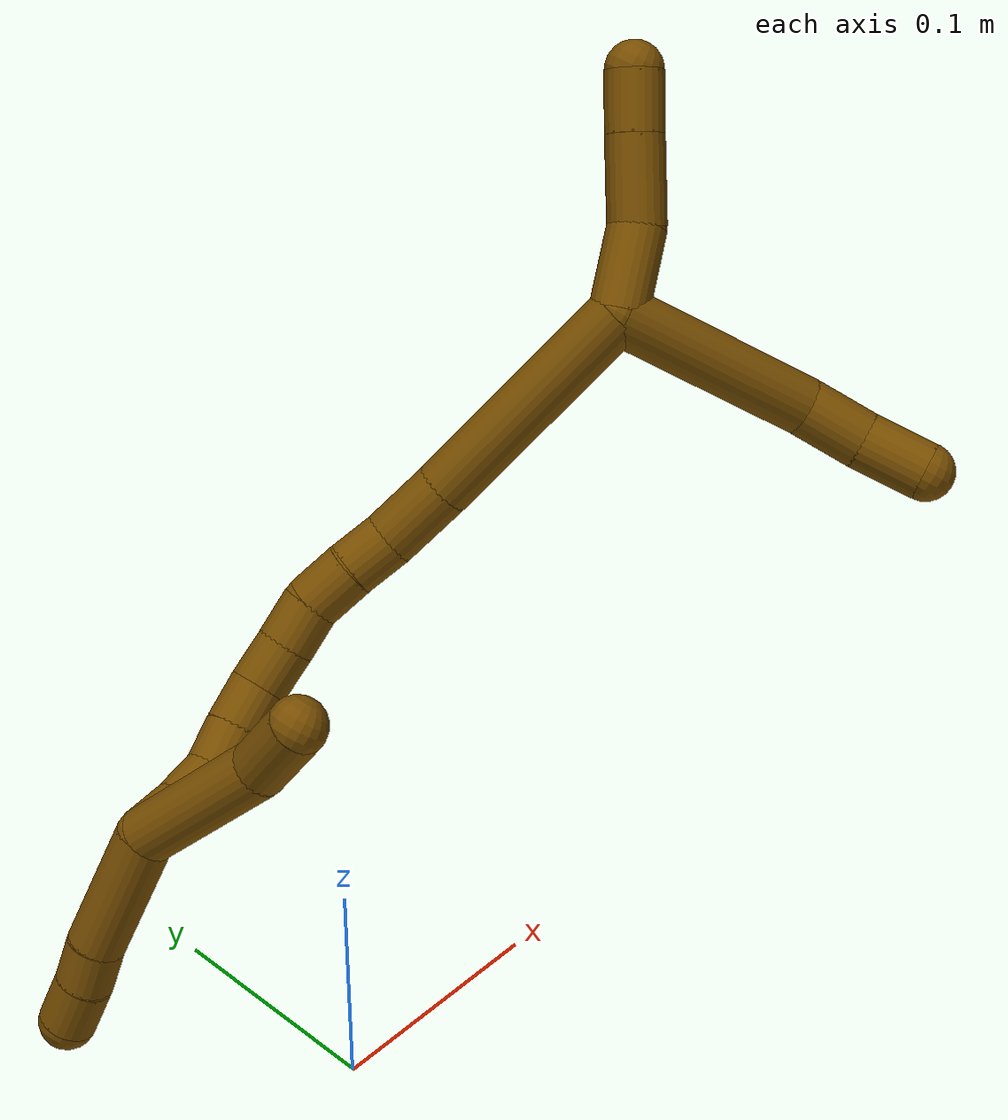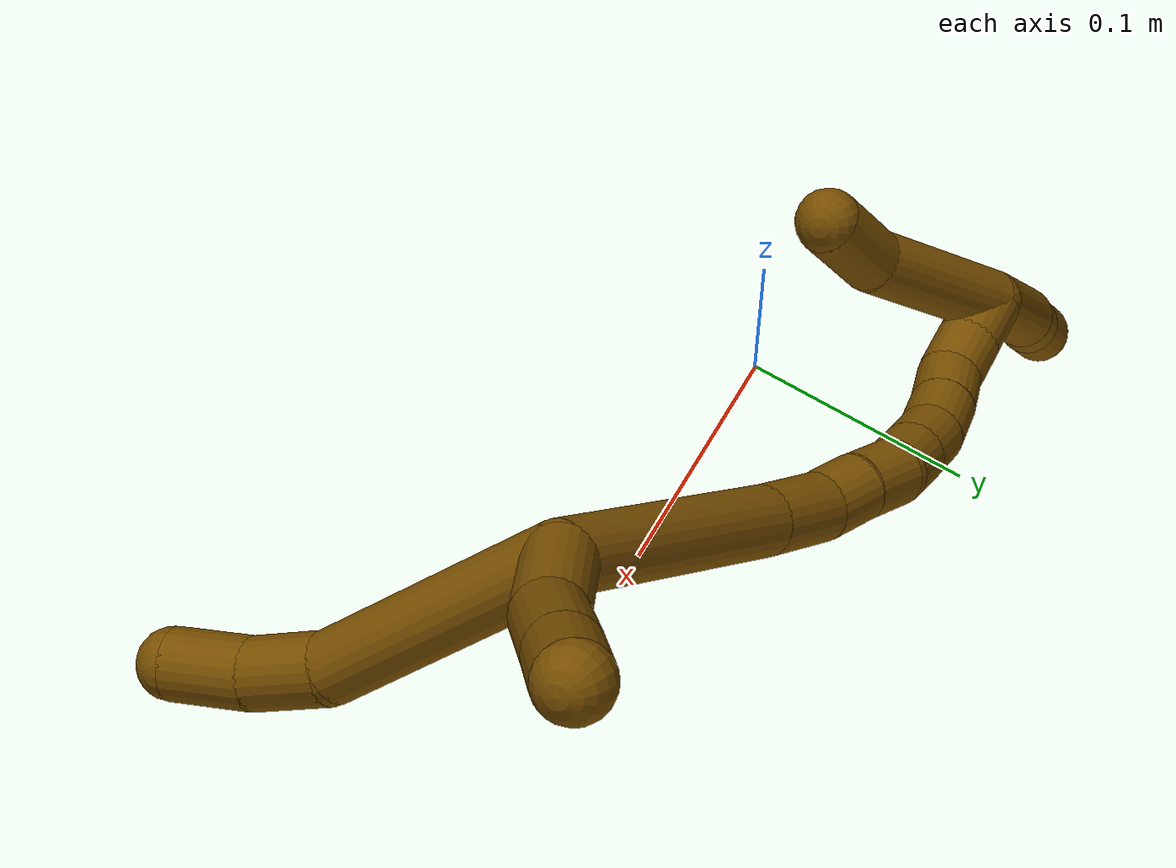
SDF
<sdf version="1.7">
 <world name="default">
  <model name="12">
   <static>0</static>
   <link name="12">
    <collision name="collision-cylinder-e_1_2_8">
     <pose>0.040711 -0.021215 0.002359 1.46006 1.08788 0.992244</pose>
     <geometry><cylinder><radius>0.0125</radius><length>0.091934</length></cylinder></geometry>
     <surface>
      <friction><ode><mu>1.16</mu><mu2>1.16</mu2><slip1>0</slip1><slip2>0</slip2></ode></friction>
      <contact><ode><kp>1e+06</kp><kd>1</kd><max_vel>0</max_vel><min_depth>0.001</min_depth></ode></contact>
     </surface>
    </collision>
    <visual name="visual-cylinder-e_1_2_8">
     <pose>0.040711 -0.021215 0.002359 1.46006 1.08788 0.992244</pose>
     <geometry><cylinder><radius>0.0125</radius><length>0.091934</length></cylinder></geometry>
     <material><ambient>0.466667 0.301961 0 1</ambient></material>
    </visual>
    <collision name="collision-cylinder-e_2_8_9">
     <pose>0.091572 -0.05266 0.004421 1.59983 0.7813 0.801957</pose>
     <geometry><cylinder><radius>0.0125</radius><length>0.028829</length></cylinder></geometry>
     <surface>
      <friction><ode><mu>1.16</mu><mu2>1.16</mu2><slip1>0</slip1><slip2>0</slip2></ode></friction>
      <contact><ode><kp>1e+06</kp><kd>1</kd><max_vel>0</max_vel><min_depth>0.001</min_depth></ode></contact>
     </surface>
    </collision>
    <visual name="visual-cylinder-e_2_8_9">
     <pose>0.091572 -0.05266 0.004421 1.59983 0.7813 0.801957</pose>
     <geometry><cylinder><radius>0.0125</radius><length>0.028829</length></cylinder></geometry>
     <material><ambient>0.466667 0.301961 0 1</ambient></material>
    </visual>
    <collision name="collision-cylinder-e_3_9_6">
     <pose>0.109644 -0.075165 0.004642 1.52858 0.57266 0.55018</pose>
     <geometry><cylinder><radius>0.0125</radius><length>0.029236</length></cylinder></geometry>
     <surface>
      <friction><ode><mu>1.16</mu><mu2>1.16</mu2><slip1>0</slip1><slip2>0</slip2></ode></friction>
      <contact><ode><kp>1e+06</kp><kd>1</kd><max_vel>0</max_vel><min_depth>0.001</min_depth></ode></contact>
     </surface>
    </collision>
    <visual name="visual-cylinder-e_3_9_6">
     <pose>0.109644 -0.075165 0.004642 1.52858 0.57266 0.55018</pose>
     <geometry><cylinder><radius>0.0125</radius><length>0.029236</length></cylinder></geometry>
     <material><ambient>0.466667 0.301961 0 1</ambient></material>
    </visual>
    <collision name="collision-cylinder-e_1_2_10">
     <pose>-0.000911 0.006082 0.017268 -0.338617 -0.049736 0.008504</pose>
     <geometry><cylinder><radius>0.0125</radius><length>0.036662</length></cylinder></geometry>
     <surface>
      <friction><ode><mu>1.16</mu><mu2>1.16</mu2><slip1>0</slip1><slip2>0</slip2></ode></friction>
      <contact><ode><kp>1e+06</kp><kd>1</kd><max_vel>0</max_vel><min_depth>0.001</min_depth></ode></contact>
     </surface>
    </collision>
    <visual name="visual-cylinder-e_1_2_10">
     <pose>-0.000911 0.006082 0.017268 -0.338617 -0.049736 0.008504</pose>
     <geometry><cylinder><radius>0.0125</radius><length>0.036662</length></cylinder></geometry>
     <material><ambient>0.466667 0.301961 0 1</ambient></material>
    </visual>
    <collision name="collision-cylinder-e_2_10_11">
     <pose>-0.008259 0.019112 0.050737 -0.405215 -0.350104 0.072632</pose>
     <geometry><cylinder><radius>0.0125</radius><length>0.037531</length></cylinder></geometry>
     <surface>
      <friction><ode><mu>1.16</mu><mu2>1.16</mu2><slip1>0</slip1><slip2>0</slip2></ode></friction>
      <contact><ode><kp>1e+06</kp><kd>1</kd><max_vel>0</max_vel><min_depth>0.001</min_depth></ode></contact>
     </surface>
    </collision>
    <visual name="visual-cylinder-e_2_10_11">
     <pose>-0.008259 0.019112 0.050737 -0.405215 -0.350104 0.072632</pose>
     <geometry><cylinder><radius>0.0125</radius><length>0.037531</length></cylinder></geometry>
     <material><ambient>0.466667 0.301961 0 1</ambient></material>
    </visual>
    <collision name="collision-cylinder-e_3_11_5">
     <pose>-0.018977 0.030781 0.078157 -0.398198 -0.338168 0.068863</pose>
     <geometry><cylinder><radius>0.0125</radius><length>0.025807</length></cylinder></geometry>
     <surface>
      <friction><ode><mu>1.16</mu><mu2>1.16</mu2><slip1>0</slip1><slip2>0</slip2></ode></friction>
      <contact><ode><kp>1e+06</kp><kd>1</kd><max_vel>0</max_vel><min_depth>0.001</min_depth></ode></contact>
     </surface>
    </collision>
    <visual name="visual-cylinder-e_3_11_5">
     <pose>-0.018977 0.030781 0.078157 -0.398198 -0.338168 0.068863</pose>
     <geometry><cylinder><radius>0.0125</radius><length>0.025807</length></cylinder></geometry>
     <material><ambient>0.466667 0.301961 0 1</ambient></material>
    </visual>
    <collision name="collision-cylinder-e_1_2_12">
     <pose>-0.001858 0.017746 -0.048777 -2.79267 -0.035775 0.202299</pose>
     <geometry><cylinder><radius>0.0125</radius><length>0.103877</length></cylinder></geometry>
     <surface>
      <friction><ode><mu>1.16</mu><mu2>1.16</mu2><slip1>0</slip1><slip2>0</slip2></ode></friction>
      <contact><ode><kp>1e+06</kp><kd>1</kd><max_vel>0</max_vel><min_depth>0.001</min_depth></ode></contact>
     </surface>
    </collision>
    <visual name="visual-cylinder-e_1_2_12">
     <pose>-0.001858 0.017746 -0.048777 -2.79267 -0.035775 0.202299</pose>
     <geometry><cylinder><radius>0.0125</radius><length>0.103877</length></cylinder></geometry>
     <material><ambient>0.466667 0.301961 0 1</ambient></material>
    </visual>
    <collision name="collision-cylinder-e_2_12_13">
     <pose>-0.005163 0.040702 -0.112197 -2.79974 -0.092888 0.526037</pose>
     <geometry><cylinder><radius>0.0125</radius><length>0.031216</length></cylinder></geometry>
     <surface>
      <friction><ode><mu>1.16</mu><mu2>1.16</mu2><slip1>0</slip1><slip2>0</slip2></ode></friction>
      <contact><ode><kp>1e+06</kp><kd>1</kd><max_vel>0</max_vel><min_depth>0.001</min_depth></ode></contact>
     </surface>
    </collision>
    <visual name="visual-cylinder-e_2_12_13">
     <pose>-0.005163 0.040702 -0.112197 -2.79974 -0.092888 0.526037</pose>
     <geometry><cylinder><radius>0.0125</radius><length>0.031216</length></cylinder></geometry>
     <material><ambient>0.466667 0.301961 0 1</ambient></material>
    </visual>
    <collision name="collision-cylinder-e_3_13_14">
     <pose>-0.009615 0.048647 -0.136357 -2.86177 -0.29455 1.62278</pose>
     <geometry><cylinder><radius>0.0125</radius><length>0.020699</length></cylinder></geometry>
     <surface>
      <friction><ode><mu>1.16</mu><mu2>1.16</mu2><slip1>0</slip1><slip2>0</slip2></ode></friction>
      <contact><ode><kp>1e+06</kp><kd>1</kd><max_vel>0</max_vel><min_depth>0.001</min_depth></ode></contact>
     </surface>
    </collision>
    <visual name="visual-cylinder-e_3_13_14">
     <pose>-0.009615 0.048647 -0.136357 -2.86177 -0.29455 1.62278</pose>
     <geometry><cylinder><radius>0.0125</radius><length>0.020699</length></cylinder></geometry>
     <material><ambient>0.466667 0.301961 0 1</ambient></material>
    </visual>
    <collision name="collision-cylinder-e_4_14_15">
     <pose>-0.01475 0.054505 -0.156268 -2.8497 -0.193834 1.1687</pose>
     <geometry><cylinder><radius>0.0125</radius><length>0.022117</length></cylinder></geometry>
     <surface>
      <friction><ode><mu>1.16</mu><mu2>1.16</mu2><slip1>0</slip1><slip2>0</slip2></ode></friction>
      <contact><ode><kp>1e+06</kp><kd>1</kd><max_vel>0</max_vel><min_depth>0.001</min_depth></ode></contact>
     </surface>
    </collision>
    <visual name="visual-cylinder-e_4_14_15">
     <pose>-0.01475 0.054505 -0.156268 -2.8497 -0.193834 1.1687</pose>
     <geometry><cylinder><radius>0.0125</radius><length>0.022117</length></cylinder></geometry>
     <material><ambient>0.466667 0.301961 0 1</ambient></material>
    </visual>
    <collision name="collision-cylinder-e_5_15_16">
     <pose>-0.01743 0.057857 -0.176833 -3.11902 -0.053962 2.34931</pose>
     <geometry><cylinder><radius>0.0125</radius><length>0.02038</length></cylinder></geometry>
     <surface>
      <friction><ode><mu>1.16</mu><mu2>1.16</mu2><slip1>0</slip1><slip2>0</slip2></ode></friction>
      <contact><ode><kp>1e+06</kp><kd>1</kd><max_vel>0</max_vel><min_depth>0.001</min_depth></ode></contact>
     </surface>
    </collision>
    <visual name="visual-cylinder-e_5_15_16">
     <pose>-0.01743 0.057857 -0.176833 -3.11902 -0.053962 2.34931</pose>
     <geometry><cylinder><radius>0.0125</radius><length>0.02038</length></cylinder></geometry>
     <material><ambient>0.466667 0.301961 0 1</ambient></material>
    </visual>
    <collision name="collision-cylinder-e_6_16_17">
     <pose>-0.019078 0.058189 -0.197367 -3.13174 -0.105618 2.95575</pose>
     <geometry><cylinder><radius>0.0125</radius><length>0.020839</length></cylinder></geometry>
     <surface>
      <friction><ode><mu>1.16</mu><mu2>1.16</mu2><slip1>0</slip1><slip2>0</slip2></ode></friction>
      <contact><ode><kp>1e+06</kp><kd>1</kd><max_vel>0</max_vel><min_depth>0.001</min_depth></ode></contact>
     </surface>
    </collision>
    <visual name="visual-cylinder-e_6_16_17">
     <pose>-0.019078 0.058189 -0.197367 -3.13174 -0.105618 2.95575</pose>
     <geometry><cylinder><radius>0.0125</radius><length>0.020839</length></cylinder></geometry>
     <material><ambient>0.466667 0.301961 0 1</ambient></material>
    </visual>
    <collision name="collision-cylinder-e_7_17_18">
     <pose>-0.022344 0.056457 -0.217505 2.95619 -0.214532 -1.71715</pose>
     <geometry><cylinder><radius>0.0125</radius><length>0.020361</length></cylinder></geometry>
     <surface>
      <friction><ode><mu>1.16</mu><mu2>1.16</mu2><slip1>0</slip1><slip2>0</slip2></ode></friction>
      <contact><ode><kp>1e+06</kp><kd>1</kd><max_vel>0</max_vel><min_depth>0.001</min_depth></ode></contact>
     </surface>
    </collision>
    <visual name="visual-cylinder-e_7_17_18">
     <pose>-0.022344 0.056457 -0.217505 2.95619 -0.214532 -1.71715</pose>
     <geometry><cylinder><radius>0.0125</radius><length>0.020361</length></cylinder></geometry>
     <material><ambient>0.466667 0.301961 0 1</ambient></material>
    </visual>
    <collision name="collision-cylinder-e_8_18_19">
     <pose>-0.02657 0.051826 -0.236732 2.85377 -0.20593 -1.23885</pose>
     <geometry><cylinder><radius>0.0125</radius><length>0.020136</length></cylinder></geometry>
     <surface>
      <friction><ode><mu>1.16</mu><mu2>1.16</mu2><slip1>0</slip1><slip2>0</slip2></ode></friction>
      <contact><ode><kp>1e+06</kp><kd>1</kd><max_vel>0</max_vel><min_depth>0.001</min_depth></ode></contact>
     </surface>
    </collision>
    <visual name="visual-cylinder-e_8_18_19">
     <pose>-0.02657 0.051826 -0.236732 2.85377 -0.20593 -1.23885</pose>
     <geometry><cylinder><radius>0.0125</radius><length>0.020136</length></cylinder></geometry>
     <material><ambient>0.466667 0.301961 0 1</ambient></material>
    </visual>
    <collision name="collision-cylinder-e_9_19_20">
     <pose>-0.033693 0.047495 -0.254819 2.96586 -0.523572 -2.5063</pose>
     <geometry><cylinder><radius>0.0125</radius><length>0.020258</length></cylinder></geometry>
     <surface>
      <friction><ode><mu>1.16</mu><mu2>1.16</mu2><slip1>0</slip1><slip2>0</slip2></ode></friction>
      <contact><ode><kp>1e+06</kp><kd>1</kd><max_vel>0</max_vel><min_depth>0.001</min_depth></ode></contact>
     </surface>
    </collision>
    <visual name="visual-cylinder-e_9_19_20">
     <pose>-0.033693 0.047495 -0.254819 2.96586 -0.523572 -2.5063</pose>
     <geometry><cylinder><radius>0.0125</radius><length>0.020258</length></cylinder></geometry>
     <material><ambient>0.466667 0.301961 0 1</ambient></material>
    </visual>
    <collision name="collision-cylinder-e_10_20_1">
     <pose>-0.045164 0.04437 -0.271044 2.93488 -0.690621 -2.58013</pose>
     <geometry><cylinder><radius>0.0125</radius><length>0.020115</length></cylinder></geometry>
     <surface>
      <friction><ode><mu>1.16</mu><mu2>1.16</mu2><slip1>0</slip1><slip2>0</slip2></ode></friction>
      <contact><ode><kp>1e+06</kp><kd>1</kd><max_vel>0</max_vel><min_depth>0.001</min_depth></ode></contact>
     </surface>
    </collision>
    <visual name="visual-cylinder-e_10_20_1">
     <pose>-0.045164 0.04437 -0.271044 2.93488 -0.690621 -2.58013</pose>
     <geometry><cylinder><radius>0.0125</radius><length>0.020115</length></cylinder></geometry>
     <material><ambient>0.466667 0.301961 0 1</ambient></material>
    </visual>
    <collision name="collision-cylinder-e_1_1_21">
     <pose>-0.05331 0.022068 -0.252477 0.669775 -0.052099 -0.018134</pose>
     <geometry><cylinder><radius>0.0125</radius><length>0.066813</length></cylinder></geometry>
     <surface>
      <friction><ode><mu>1.16</mu><mu2>1.16</mu2><slip1>0</slip1><slip2>0</slip2></ode></friction>
      <contact><ode><kp>1e+06</kp><kd>1</kd><max_vel>0</max_vel><min_depth>0.001</min_depth></ode></contact>
     </surface>
    </collision>
    <visual name="visual-cylinder-e_1_1_21">
     <pose>-0.05331 0.022068 -0.252477 0.669775 -0.052099 -0.018134</pose>
     <geometry><cylinder><radius>0.0125</radius><length>0.066813</length></cylinder></geometry>
     <material><ambient>0.466667 0.301961 0 1</ambient></material>
    </visual>
    <collision name="collision-cylinder-e_2_21_4">
     <pose>-0.060622 -0.007793 -0.213652 0.625405 -0.342472 -0.111703</pose>
     <geometry><cylinder><radius>0.0125</radius><length>0.033187</length></cylinder></geometry>
     <surface>
      <friction><ode><mu>1.16</mu><mu2>1.16</mu2><slip1>0</slip1><slip2>0</slip2></ode></friction>
      <contact><ode><kp>1e+06</kp><kd>1</kd><max_vel>0</max_vel><min_depth>0.001</min_depth></ode></contact>
     </surface>
    </collision>
    <visual name="visual-cylinder-e_2_21_4">
     <pose>-0.060622 -0.007793 -0.213652 0.625405 -0.342472 -0.111703</pose>
     <geometry><cylinder><radius>0.0125</radius><length>0.033187</length></cylinder></geometry>
     <material><ambient>0.466667 0.301961 0 1</ambient></material>
    </visual>
    <collision name="collision-cylinder-e_1_1_22">
     <pose>-0.043666 0.048417 -0.305536 -2.93501 0.280001 -1.8732</pose>
     <geometry><cylinder><radius>0.0125</radius><length>0.057207</length></cylinder></geometry>
     <surface>
      <friction><ode><mu>1.16</mu><mu2>1.16</mu2><slip1>0</slip1><slip2>0</slip2></ode></friction>
      <contact><ode><kp>1e+06</kp><kd>1</kd><max_vel>0</max_vel><min_depth>0.001</min_depth></ode></contact>
     </surface>
    </collision>
    <visual name="visual-cylinder-e_1_1_22">
     <pose>-0.043666 0.048417 -0.305536 -2.93501 0.280001 -1.8732</pose>
     <geometry><cylinder><radius>0.0125</radius><length>0.057207</length></cylinder></geometry>
     <material><ambient>0.466667 0.301961 0 1</ambient></material>
    </visual>
    <collision name="collision-cylinder-e_2_22_23">
     <pose>-0.032075 0.055416 -0.341778 -2.99692 0.372388 -2.40713</pose>
     <geometry><cylinder><radius>0.0125</radius><length>0.020259</length></cylinder></geometry>
     <surface>
      <friction><ode><mu>1.16</mu><mu2>1.16</mu2><slip1>0</slip1><slip2>0</slip2></ode></friction>
      <contact><ode><kp>1e+06</kp><kd>1</kd><max_vel>0</max_vel><min_depth>0.001</min_depth></ode></contact>
     </surface>
    </collision>
    <visual name="visual-cylinder-e_2_22_23">
     <pose>-0.032075 0.055416 -0.341778 -2.99692 0.372388 -2.40713</pose>
     <geometry><cylinder><radius>0.0125</radius><length>0.020259</length></cylinder></geometry>
     <material><ambient>0.466667 0.301961 0 1</ambient></material>
    </visual>
    <collision name="collision-cylinder-e_3_23_3">
     <pose>-0.024739 0.059289 -0.361473 -2.90364 0.330027 -1.89637</pose>
     <geometry><cylinder><radius>0.0125</radius><length>0.022534</length></cylinder></geometry>
     <surface>
      <friction><ode><mu>1.16</mu><mu2>1.16</mu2><slip1>0</slip1><slip2>0</slip2></ode></friction>
      <contact><ode><kp>1e+06</kp><kd>1</kd><max_vel>0</max_vel><min_depth>0.001</min_depth></ode></contact>
     </surface>
    </collision>
    <visual name="visual-cylinder-e_3_23_3">
     <pose>-0.024739 0.059289 -0.361473 -2.90364 0.330027 -1.89637</pose>
     <geometry><cylinder><radius>0.0125</radius><length>0.022534</length></cylinder></geometry>
     <material><ambient>0.466667 0.301961 0 1</ambient></material>
    </visual>
    <collision name="collision-sphere-3">
     <pose>-0.021087 0.061801 -0.371832 0 -0 0</pose>
     <geometry><sphere><radius>0.0125</radius></sphere></geometry>
     <surface>
      <friction><ode><mu>1.16</mu><mu2>1.16</mu2><slip1>0</slip1><slip2>0</slip2></ode></friction>
      <contact><ode><kp>1e+06</kp><kd>1</kd><max_vel>0</max_vel><min_depth>0.001</min_depth></ode></contact>
     </surface>
    </collision>
    <visual name="visual-sphere-3">
     <pose>-0.021087 0.061801 -0.371832 0 -0 0</pose>
     <geometry><sphere><radius>0.0125</radius></sphere></geometry>
     <material><ambient>0.466667 0.301961 0 1</ambient></material>
    </visual>
    <collision name="collision-sphere-23">
     <pose>-0.02839 0.056776 -0.351115 0 -0 0</pose>
     <geometry><sphere><radius>0.0125</radius></sphere></geometry>
     <surface>
      <friction><ode><mu>1.16</mu><mu2>1.16</mu2><slip1>0</slip1><slip2>0</slip2></ode></friction>
      <contact><ode><kp>1e+06</kp><kd>1</kd><max_vel>0</max_vel><min_depth>0.001</min_depth></ode></contact>
     </surface>
    </collision>
    <visual name="visual-sphere-23">
     <pose>-0.02839 0.056776 -0.351115 0 -0 0</pose>
     <geometry><sphere><radius>0.0125</radius></sphere></geometry>
     <material><ambient>0.466667 0.301961 0 1</ambient></material>
    </visual>
    <collision name="collision-sphere-22">
     <pose>-0.035761 0.054056 -0.332442 0 -0 0</pose>
     <geometry><sphere><radius>0.0125</radius></sphere></geometry>
     <surface>
      <friction><ode><mu>1.16</mu><mu2>1.16</mu2><slip1>0</slip1><slip2>0</slip2></ode></friction>
      <contact><ode><kp>1e+06</kp><kd>1</kd><max_vel>0</max_vel><min_depth>0.001</min_depth></ode></contact>
     </surface>
    </collision>
    <visual name="visual-sphere-22">
     <pose>-0.035761 0.054056 -0.332442 0 -0 0</pose>
     <geometry><sphere><radius>0.0125</radius></sphere></geometry>
     <material><ambient>0.466667 0.301961 0 1</ambient></material>
    </visual>
    <collision name="collision-sphere-4">
     <pose>-0.066195 -0.016943 -0.20098 0 -0 0</pose>
     <geometry><sphere><radius>0.0125</radius></sphere></geometry>
     <surface>
      <friction><ode><mu>1.16</mu><mu2>1.16</mu2><slip1>0</slip1><slip2>0</slip2></ode></friction>
      <contact><ode><kp>1e+06</kp><kd>1</kd><max_vel>0</max_vel><min_depth>0.001</min_depth></ode></contact>
     </surface>
    </collision>
    <visual name="visual-sphere-4">
     <pose>-0.066195 -0.016943 -0.20098 0 -0 0</pose>
     <geometry><sphere><radius>0.0125</radius></sphere></geometry>
     <material><ambient>0.466667 0.301961 0 1</ambient></material>
    </visual>
    <collision name="collision-sphere-21">
     <pose>-0.05505 0.001357 -0.226324 0 -0 0</pose>
     <geometry><sphere><radius>0.0125</radius></sphere></geometry>
     <surface>
      <friction><ode><mu>1.16</mu><mu2>1.16</mu2><slip1>0</slip1><slip2>0</slip2></ode></friction>
      <contact><ode><kp>1e+06</kp><kd>1</kd><max_vel>0</max_vel><min_depth>0.001</min_depth></ode></contact>
     </surface>
    </collision>
    <visual name="visual-sphere-21">
     <pose>-0.05505 0.001357 -0.226324 0 -0 0</pose>
     <geometry><sphere><radius>0.0125</radius></sphere></geometry>
     <material><ambient>0.466667 0.301961 0 1</ambient></material>
    </visual>
    <collision name="collision-sphere-1">
     <pose>-0.051571 0.042779 -0.278631 0 -0 0</pose>
     <geometry><sphere><radius>0.0125</radius></sphere></geometry>
     <surface>
      <friction><ode><mu>1.16</mu><mu2>1.16</mu2><slip1>0</slip1><slip2>0</slip2></ode></friction>
      <contact><ode><kp>1e+06</kp><kd>1</kd><max_vel>0</max_vel><min_depth>0.001</min_depth></ode></contact>
     </surface>
    </collision>
    <visual name="visual-sphere-1">
     <pose>-0.051571 0.042779 -0.278631 0 -0 0</pose>
     <geometry><sphere><radius>0.0125</radius></sphere></geometry>
     <material><ambient>0.466667 0.301961 0 1</ambient></material>
    </visual>
    <collision name="collision-sphere-11">
     <pose>-0.014696 0.026061 0.066936 0 -0 0</pose>
     <geometry><sphere><radius>0.0125</radius></sphere></geometry>
     <surface>
      <friction><ode><mu>1.16</mu><mu2>1.16</mu2><slip1>0</slip1><slip2>0</slip2></ode></friction>
      <contact><ode><kp>1e+06</kp><kd>1</kd><max_vel>0</max_vel><min_depth>0.001</min_depth></ode></contact>
     </surface>
    </collision>
    <visual name="visual-sphere-11">
     <pose>-0.014696 0.026061 0.066936 0 -0 0</pose>
     <geometry><sphere><radius>0.0125</radius></sphere></geometry>
     <material><ambient>0.466667 0.301961 0 1</ambient></material>
    </visual>
    <collision name="collision-sphere-10">
     <pose>-0.001823 0.012163 0.034537 0 -0 0</pose>
     <geometry><sphere><radius>0.0125</radius></sphere></geometry>
     <surface>
      <friction><ode><mu>1.16</mu><mu2>1.16</mu2><slip1>0</slip1><slip2>0</slip2></ode></friction>
      <contact><ode><kp>1e+06</kp><kd>1</kd><max_vel>0</max_vel><min_depth>0.001</min_depth></ode></contact>
     </surface>
    </collision>
    <visual name="visual-sphere-10">
     <pose>-0.001823 0.012163 0.034537 0 -0 0</pose>
     <geometry><sphere><radius>0.0125</radius></sphere></geometry>
     <material><ambient>0.466667 0.301961 0 1</ambient></material>
    </visual>
    <collision name="collision-sphere-6">
     <pose>0.117565 -0.08744 0.005161 0 -0 0</pose>
     <geometry><sphere><radius>0.0125</radius></sphere></geometry>
     <surface>
      <friction><ode><mu>1.16</mu><mu2>1.16</mu2><slip1>0</slip1><slip2>0</slip2></ode></friction>
      <contact><ode><kp>1e+06</kp><kd>1</kd><max_vel>0</max_vel><min_depth>0.001</min_depth></ode></contact>
     </surface>
    </collision>
    <visual name="visual-sphere-6">
     <pose>0.117565 -0.08744 0.005161 0 -0 0</pose>
     <geometry><sphere><radius>0.0125</radius></sphere></geometry>
     <material><ambient>0.466667 0.301961 0 1</ambient></material>
    </visual>
    <collision name="collision-sphere-9">
     <pose>0.101723 -0.06289 0.004124 0 -0 0</pose>
     <geometry><sphere><radius>0.0125</radius></sphere></geometry>
     <surface>
      <friction><ode><mu>1.16</mu><mu2>1.16</mu2><slip1>0</slip1><slip2>0</slip2></ode></friction>
      <contact><ode><kp>1e+06</kp><kd>1</kd><max_vel>0</max_vel><min_depth>0.001</min_depth></ode></contact>
     </surface>
    </collision>
    <visual name="visual-sphere-9">
     <pose>0.101723 -0.06289 0.004124 0 -0 0</pose>
     <geometry><sphere><radius>0.0125</radius></sphere></geometry>
     <material><ambient>0.466667 0.301961 0 1</ambient></material>
    </visual>
    <collision name="collision-sphere-2">
     <geometry><sphere><radius>0.0125</radius></sphere></geometry>
     <surface>
      <friction><ode><mu>1.16</mu><mu2>1.16</mu2><slip1>0</slip1><slip2>0</slip2></ode></friction>
      <contact><ode><kp>1e+06</kp><kd>1</kd><max_vel>0</max_vel><min_depth>0.001</min_depth></ode></contact>
     </surface>
    </collision>
    <visual name="visual-sphere-2">
     <geometry><sphere><radius>0.0125</radius></sphere></geometry>
     <material><ambient>0.466667 0.301961 0 1</ambient></material>
    </visual>
    <collision name="collision-sphere-19">
     <pose>-0.028629 0.049028 -0.246182 0 -0 0</pose>
     <geometry><sphere><radius>0.0125</radius></sphere></geometry>
     <surface>
      <friction><ode><mu>1.16</mu><mu2>1.16</mu2><slip1>0</slip1><slip2>0</slip2></ode></friction>
      <contact><ode><kp>1e+06</kp><kd>1</kd><max_vel>0</max_vel><min_depth>0.001</min_depth></ode></contact>
     </surface>
    </collision>
    <visual name="visual-sphere-19">
     <pose>-0.028629 0.049028 -0.246182 0 -0 0</pose>
     <geometry><sphere><radius>0.0125</radius></sphere></geometry>
     <material><ambient>0.466667 0.301961 0 1</ambient></material>
    </visual>
    <collision name="collision-sphere-8">
     <pose>0.081421 -0.04243 0.004718 0 -0 0</pose>
     <geometry><sphere><radius>0.0125</radius></sphere></geometry>
     <surface>
      <friction><ode><mu>1.16</mu><mu2>1.16</mu2><slip1>0</slip1><slip2>0</slip2></ode></friction>
      <contact><ode><kp>1e+06</kp><kd>1</kd><max_vel>0</max_vel><min_depth>0.001</min_depth></ode></contact>
     </surface>
    </collision>
    <visual name="visual-sphere-8">
     <pose>0.081421 -0.04243 0.004718 0 -0 0</pose>
     <geometry><sphere><radius>0.0125</radius></sphere></geometry>
     <material><ambient>0.466667 0.301961 0 1</ambient></material>
    </visual>
    <collision name="collision-sphere-5">
     <pose>-0.023257 0.035501 0.089377 0 -0 0</pose>
     <geometry><sphere><radius>0.0125</radius></sphere></geometry>
     <surface>
      <friction><ode><mu>1.16</mu><mu2>1.16</mu2><slip1>0</slip1><slip2>0</slip2></ode></friction>
      <contact><ode><kp>1e+06</kp><kd>1</kd><max_vel>0</max_vel><min_depth>0.001</min_depth></ode></contact>
     </surface>
    </collision>
    <visual name="visual-sphere-5">
     <pose>-0.023257 0.035501 0.089377 0 -0 0</pose>
     <geometry><sphere><radius>0.0125</radius></sphere></geometry>
     <material><ambient>0.466667 0.301961 0 1</ambient></material>
    </visual>
    <collision name="collision-sphere-12">
     <pose>-0.003715 0.035492 -0.097555 0 -0 0</pose>
     <geometry><sphere><radius>0.0125</radius></sphere></geometry>
     <surface>
      <friction><ode><mu>1.16</mu><mu2>1.16</mu2><slip1>0</slip1><slip2>0</slip2></ode></friction>
      <contact><ode><kp>1e+06</kp><kd>1</kd><max_vel>0</max_vel><min_depth>0.001</min_depth></ode></contact>
     </surface>
    </collision>
    <visual name="visual-sphere-12">
     <pose>-0.003715 0.035492 -0.097555 0 -0 0</pose>
     <geometry><sphere><radius>0.0125</radius></sphere></geometry>
     <material><ambient>0.466667 0.301961 0 1</ambient></material>
    </visual>
    <collision name="collision-sphere-13">
     <pose>-0.006611 0.045912 -0.126838 0 -0 0</pose>
     <geometry><sphere><radius>0.0125</radius></sphere></geometry>
     <surface>
      <friction><ode><mu>1.16</mu><mu2>1.16</mu2><slip1>0</slip1><slip2>0</slip2></ode></friction>
      <contact><ode><kp>1e+06</kp><kd>1</kd><max_vel>0</max_vel><min_depth>0.001</min_depth></ode></contact>
     </surface>
    </collision>
    <visual name="visual-sphere-13">
     <pose>-0.006611 0.045912 -0.126838 0 -0 0</pose>
     <geometry><sphere><radius>0.0125</radius></sphere></geometry>
     <material><ambient>0.466667 0.301961 0 1</ambient></material>
    </visual>
    <collision name="collision-sphere-14">
     <pose>-0.01262 0.051382 -0.145876 0 -0 0</pose>
     <geometry><sphere><radius>0.0125</radius></sphere></geometry>
     <surface>
      <friction><ode><mu>1.16</mu><mu2>1.16</mu2><slip1>0</slip1><slip2>0</slip2></ode></friction>
      <contact><ode><kp>1e+06</kp><kd>1</kd><max_vel>0</max_vel><min_depth>0.001</min_depth></ode></contact>
     </surface>
    </collision>
    <visual name="visual-sphere-14">
     <pose>-0.01262 0.051382 -0.145876 0 -0 0</pose>
     <geometry><sphere><radius>0.0125</radius></sphere></geometry>
     <material><ambient>0.466667 0.301961 0 1</ambient></material>
    </visual>
    <collision name="collision-sphere-15">
     <pose>-0.01688 0.057628 -0.166661 0 -0 0</pose>
     <geometry><sphere><radius>0.0125</radius></sphere></geometry>
     <surface>
      <friction><ode><mu>1.16</mu><mu2>1.16</mu2><slip1>0</slip1><slip2>0</slip2></ode></friction>
      <contact><ode><kp>1e+06</kp><kd>1</kd><max_vel>0</max_vel><min_depth>0.001</min_depth></ode></contact>
     </surface>
    </collision>
    <visual name="visual-sphere-15">
     <pose>-0.01688 0.057628 -0.166661 0 -0 0</pose>
     <geometry><sphere><radius>0.0125</radius></sphere></geometry>
     <material><ambient>0.466667 0.301961 0 1</ambient></material>
    </visual>
    <collision name="collision-sphere-16">
     <pose>-0.01798 0.058087 -0.187006 0 -0 0</pose>
     <geometry><sphere><radius>0.0125</radius></sphere></geometry>
     <surface>
      <friction><ode><mu>1.16</mu><mu2>1.16</mu2><slip1>0</slip1><slip2>0</slip2></ode></friction>
      <contact><ode><kp>1e+06</kp><kd>1</kd><max_vel>0</max_vel><min_depth>0.001</min_depth></ode></contact>
     </surface>
    </collision>
    <visual name="visual-sphere-16">
     <pose>-0.01798 0.058087 -0.187006 0 -0 0</pose>
     <geometry><sphere><radius>0.0125</radius></sphere></geometry>
     <material><ambient>0.466667 0.301961 0 1</ambient></material>
    </visual>
    <collision name="collision-sphere-17">
     <pose>-0.020176 0.058291 -0.207728 0 -0 0</pose>
     <geometry><sphere><radius>0.0125</radius></sphere></geometry>
     <surface>
      <friction><ode><mu>1.16</mu><mu2>1.16</mu2><slip1>0</slip1><slip2>0</slip2></ode></friction>
      <contact><ode><kp>1e+06</kp><kd>1</kd><max_vel>0</max_vel><min_depth>0.001</min_depth></ode></contact>
     </surface>
    </collision>
    <visual name="visual-sphere-17">
     <pose>-0.020176 0.058291 -0.207728 0 -0 0</pose>
     <geometry><sphere><radius>0.0125</radius></sphere></geometry>
     <material><ambient>0.466667 0.301961 0 1</ambient></material>
    </visual>
    <collision name="collision-sphere-18">
     <pose>-0.024511 0.054624 -0.227282 0 -0 0</pose>
     <geometry><sphere><radius>0.0125</radius></sphere></geometry>
     <surface>
      <friction><ode><mu>1.16</mu><mu2>1.16</mu2><slip1>0</slip1><slip2>0</slip2></ode></friction>
      <contact><ode><kp>1e+06</kp><kd>1</kd><max_vel>0</max_vel><min_depth>0.001</min_depth></ode></contact>
     </surface>
    </collision>
    <visual name="visual-sphere-18">
     <pose>-0.024511 0.054624 -0.227282 0 -0 0</pose>
     <geometry><sphere><radius>0.0125</radius></sphere></geometry>
     <material><ambient>0.466667 0.301961 0 1</ambient></material>
    </visual>
    <collision name="collision-sphere-20">
     <pose>-0.038757 0.045961 -0.263456 0 -0 0</pose>
     <geometry><sphere><radius>0.0125</radius></sphere></geometry>
     <surface>
      <friction><ode><mu>1.16</mu><mu2>1.16</mu2><slip1>0</slip1><slip2>0</slip2></ode></friction>
      <contact><ode><kp>1e+06</kp><kd>1</kd><max_vel>0</max_vel><min_depth>0.001</min_depth></ode></contact>
     </surface>
    </collision>
    <visual name="visual-sphere-20">
     <pose>-0.038757 0.045961 -0.263456 0 -0 0</pose>
     <geometry><sphere><radius>0.0125</radius></sphere></geometry>
     <material><ambient>0.466667 0.301961 0 1</ambient></material>
    </visual>
    <inertial>
     <pose>-0.006316 0.019038 -0.12513 0 -0 0</pose>
     <mass>0.75</mass>
     <inertia>
      <ixx>0.000191</ixx>
      <ixy>0</ixy>
      <ixz>0</ixz>
      <iyy>4.3e-05</iyy>
      <iyz>0</iyz>
      <izz>-6.1e-05</izz>
     </inertia>
    </inertial>
   </link>
   <pose>0.189143 0.028204 0.275741 -0.121018 0.738928 -0.206657</pose>
  </model>
 </world>
</sdf>
